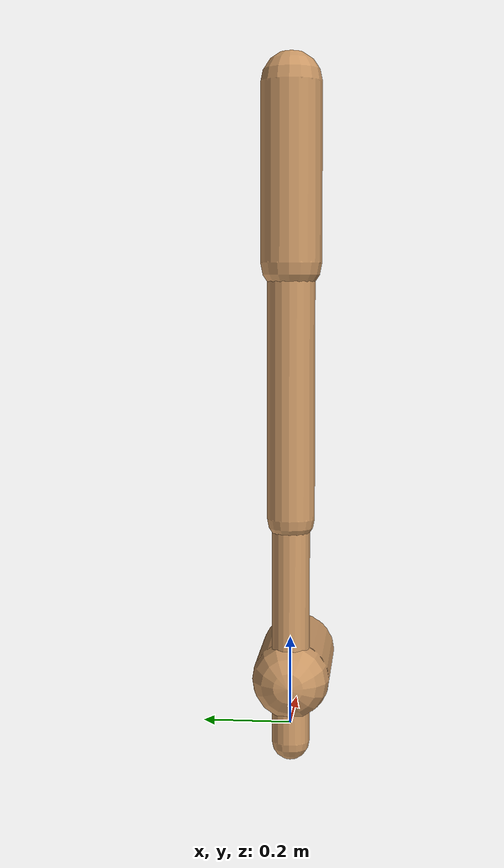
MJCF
<mujoco model="walker2d">
  <compiler angle="degree" coordinate="global" inertiafromgeom="true" />
  <default>
    <joint armature="0.01" damping=".1" limited="true" />
    <geom conaffinity="0" condim="3" contype="1" density="1000" friction="0.8 .1 .1" rgba="0.8 0.6 .4 1" />
  </default>
  <option integrator="RK4" timestep="0.002" />
  <worldbody>

    <body name="torso" pos="0 0 0.2700795860729068">
      <joint armature="0" axis="1 0 0" damping="0" limited="false" name="ignorex" pos="0 0 0" stiffness="0" type="slide" />
      <joint armature="0" axis="0 0 1" damping="0" limited="false" name="ignorez" pos="0 0 0" ref="1.25" stiffness="0" type="slide" />
      <joint armature="0" axis="0 1 0" damping="0" limited="false" name="ignorey" pos="0 0 0" stiffness="0" type="hinge" />
      <geom fromto="0 0 1.45 0 0 1.05" name="torso_geom" size="0.06917803502236917" type="capsule" />
      <body name="thigh">
        <joint axis="0 -1 0" name="thigh_joint" pos="0 0 1.05" range="-150 0" type="hinge" />
        <geom fromto="0.0 0.0 1.05 0.0 0.0 0.472067564491781" name="thigh_geom" size="0.054085996891141255" type="capsule" />
        <body name="leg" pos="0.0 0.0 -0.12793243550821898">
          <joint axis="0 -1 0" name="leg_joint" pos="0 0 0.6" range="-150 0" type="hinge" />
          <geom fromto="0.0 0.0 0.6 0.0 0.0 -0.04214715056468776" name="leg_geom" size="0.043268797512913" type="capsule" />
          <body name="foot" pos="0.0 0.0 -0.14214715056468777">
            <joint axis="0 -1 0" name="foot_joint" pos="0 0 0.1" range="-45 45" type="hinge" />
            <geom fromto="-0.0 0.0 0.1 0.28040526317193964 0.0 0.1" name="foot_geom" size="0.08825799880742215" type="capsule" />
          </body>
        </body>
      </body>

      <body name="thigh_left">
        <joint axis="0 -1 0" name="thigh_left_joint" pos="0 0 1.05" range="-150 0" type="hinge" />
        <geom fromto="0.0 0.0 1.05 0.0 0.0 0.472067564491781" name="thigh_left_geom" rgba=".7 .3 .6 1" size="0.054085996891141255" type="capsule" />
        <body name="leg_left" pos="0.0 0.0 -0.12793243550821898">
          <joint axis="0 -1 0" name="leg_left_joint" pos="0 0 0.6" range="-150 0" type="hinge" />
          <geom fromto="0.0 0.0 0.6 0.0 0.0 -0.04214715056468776" name="leg_left_geom" rgba=".7 .3 .6 1" size="0.043268797512913" type="capsule" />
          <body name="foot_left" pos="0.0 0.0 -0.14214715056468777">
            <joint axis="0 -1 0" name="foot_left_joint" pos="0 0 0.1" range="-45 45" type="hinge" />
            <geom fromto="-0.0 0.0 0.1 0.28040526317193964 0.0 0.1" name="foot_left_geom" rgba=".7 .3 .6 1" size="0.08825799880742215" type="capsule" />
          </body>
        </body>
      </body>
    </body>
  </worldbody>
  <actuator>

    <motor ctrllimited="true" ctrlrange="-1.0 1.0" gear="100" joint="thigh_joint" />
    <motor ctrllimited="true" ctrlrange="-1.0 1.0" gear="100" joint="leg_joint" />
    <motor ctrllimited="true" ctrlrange="-1.0 1.0" gear="100" joint="foot_joint" />
    <motor ctrllimited="true" ctrlrange="-1.0 1.0" gear="100" joint="thigh_left_joint" />
    <motor ctrllimited="true" ctrlrange="-1.0 1.0" gear="100" joint="leg_left_joint" />
    <motor ctrllimited="true" ctrlrange="-1.0 1.0" gear="100" joint="foot_left_joint" />

  </actuator>
</mujoco>
